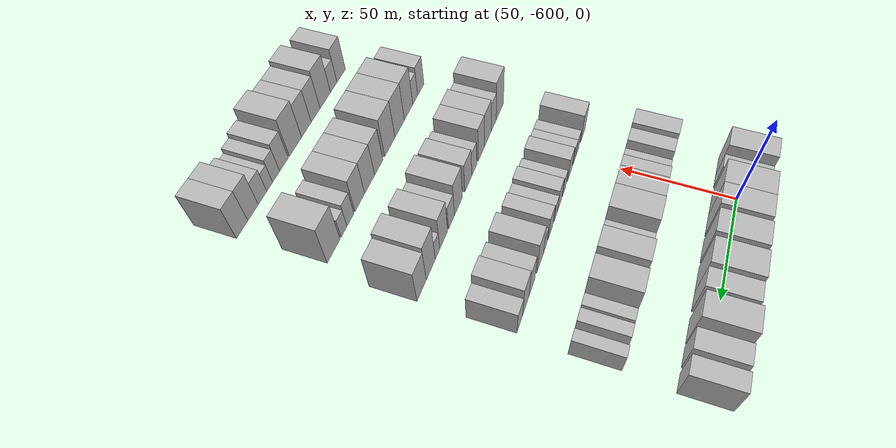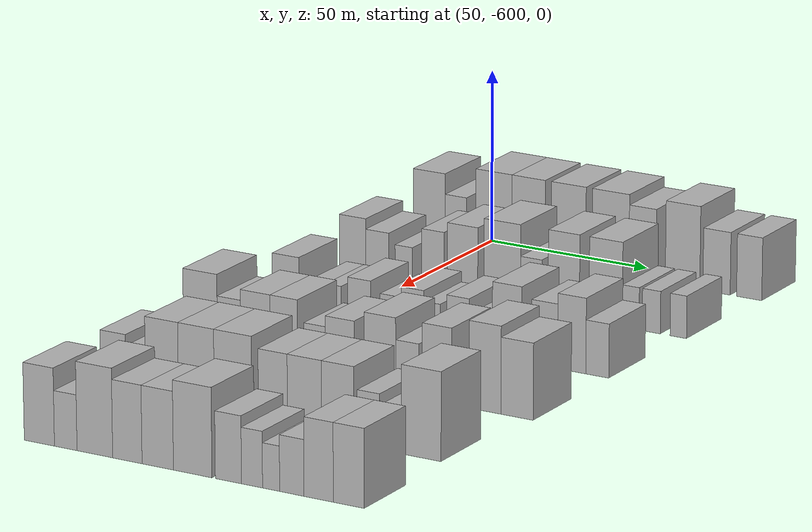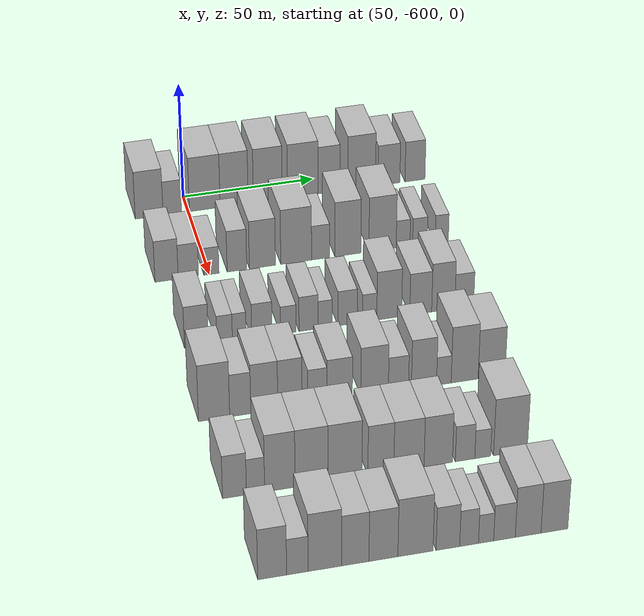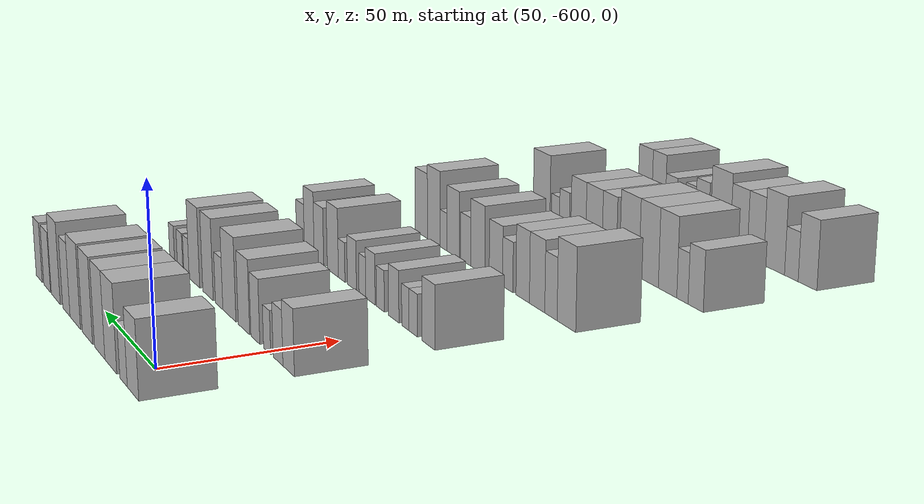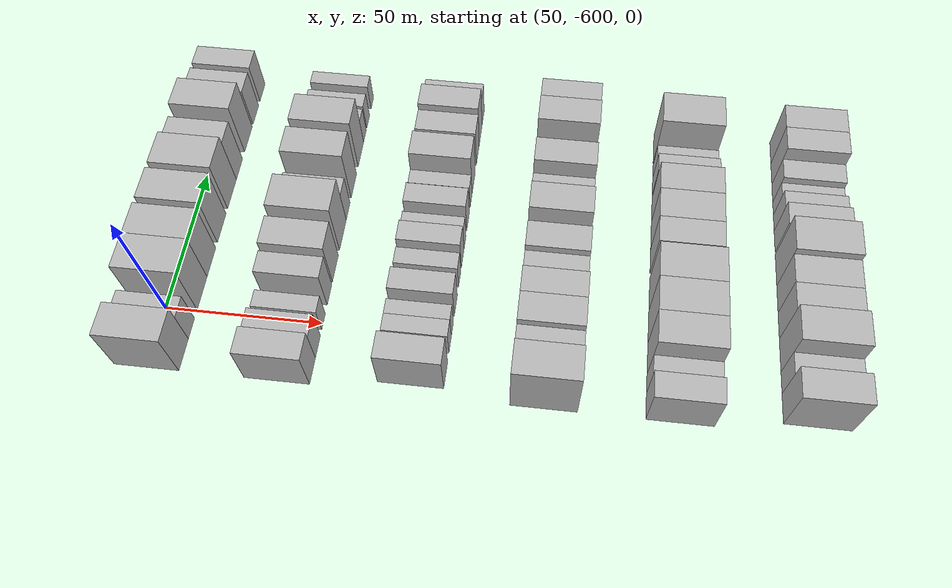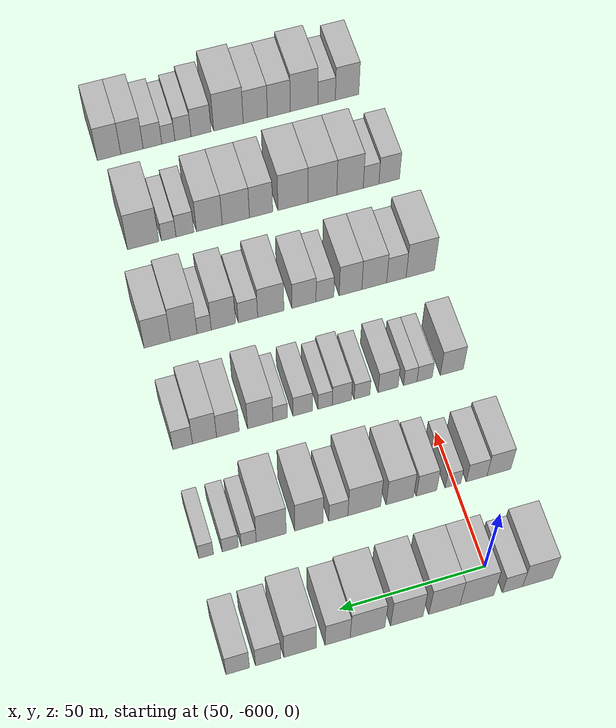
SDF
<sdf version="1.6">
 <world name="default">
  <model name="building_1">
   <static>1</static>
   <pose>50.0000 -614.7696 0 0.000000 0.000000 0.000000</pose>
   <link name="link">
    <pose>0 0 10.50 0 0 0</pose>
    <collision name="collision"><geometry><box><size>20.0000 10.4608 21.0000</size></box></geometry></collision>
    <visual name="visual">
     <cast_shadows>0</cast_shadows>
     <geometry><box><size>20.0000 10.4608 21.0000</size></box></geometry>
     <material>
      <script>
       <uri>model://HANNAS_wall/materials/scripts</uri>
       <uri>model://HANNAS_wall/materials/textures</uri>
       <name>vrc/HANNAS_wall</name>
      </script>
     </material>
    </visual>
   </link>
  </model>
  <model name="building_2">
   <static>1</static>
   <pose>50.0000 -606.0425 0 0.000000 0.000000 0.000000</pose>
   <link name="link">
    <pose>0 0 7.50 0 0 0</pose>
    <collision name="collision"><geometry><box><size>20.0000 6.9933 15.0000</size></box></geometry></collision>
    <visual name="visual">
     <cast_shadows>0</cast_shadows>
     <geometry><box><size>20.0000 6.9933 15.0000</size></box></geometry>
     <material>
      <script>
       <uri>model://HANNAS_wall/materials/scripts</uri>
       <uri>model://HANNAS_wall/materials/textures</uri>
       <name>vrc/HANNAS_wall</name>
      </script>
     </material>
    </visual>
   </link>
  </model>
  <model name="building_3">
   <static>1</static>
   <pose>50.0000 -593.7017 0 0.000000 0.000000 0.000000</pose>
   <link name="link">
    <pose>0 0 12.00 0 0 0</pose>
    <collision name="collision"><geometry><box><size>20.0000 11.6883 24.0000</size></box></geometry></collision>
    <visual name="visual">
     <cast_shadows>0</cast_shadows>
     <geometry><box><size>20.0000 11.6883 24.0000</size></box></geometry>
     <material>
      <script>
       <uri>model://HANNAS_wall/materials/scripts</uri>
       <uri>model://HANNAS_wall/materials/textures</uri>
       <name>vrc/HANNAS_wall</name>
      </script>
     </material>
    </visual>
   </link>
  </model>
  <model name="building_4">
   <static>1</static>
   <pose>50.0000 -582.5032 0 0.000000 0.000000 0.000000</pose>
   <link name="link">
    <pose>0 0 12.00 0 0 0</pose>
    <collision name="collision"><geometry><box><size>20.0000 10.7088 24.0000</size></box></geometry></collision>
    <visual name="visual">
     <cast_shadows>0</cast_shadows>
     <geometry><box><size>20.0000 10.7088 24.0000</size></box></geometry>
     <material>
      <script>
       <uri>model://HANNAS_wall/materials/scripts</uri>
       <uri>model://HANNAS_wall/materials/textures</uri>
       <name>vrc/HANNAS_wall</name>
      </script>
     </material>
    </visual>
   </link>
  </model>
  <model name="building_5">
   <static>1</static>
   <pose>50.0000 -569.6281 0 0.000000 0.000000 0.000000</pose>
   <link name="link">
    <pose>0 0 12.00 0 0 0</pose>
    <collision name="collision"><geometry><box><size>20.0000 11.0413 24.0000</size></box></geometry></collision>
    <visual name="visual">
     <cast_shadows>0</cast_shadows>
     <geometry><box><size>20.0000 11.0413 24.0000</size></box></geometry>
     <material>
      <script>
       <uri>model://HANNAS_wall/materials/scripts</uri>
       <uri>model://HANNAS_wall/materials/textures</uri>
       <name>vrc/HANNAS_wall</name>
      </script>
     </material>
    </visual>
   </link>
  </model>
  <model name="building_6">
   <static>1</static>
   <pose>50.0000 -556.2338 0 0.000000 0.000000 0.000000</pose>
   <link name="link">
    <pose>0 0 12.00 0 0 0</pose>
    <collision name="collision"><geometry><box><size>20.0000 11.7473 24.0000</size></box></geometry></collision>
    <visual name="visual">
     <cast_shadows>0</cast_shadows>
     <geometry><box><size>20.0000 11.7473 24.0000</size></box></geometry>
     <material>
      <script>
       <uri>model://HANNAS_wall/materials/scripts</uri>
       <uri>model://HANNAS_wall/materials/textures</uri>
       <name>vrc/HANNAS_wall</name>
      </script>
     </material>
    </visual>
   </link>
  </model>
  <model name="building_7">
   <static>1</static>
   <pose>50.0000 -546.1125 0 0.000000 0.000000 0.000000</pose>
   <link name="link">
    <pose>0 0 10.50 0 0 0</pose>
    <collision name="collision"><geometry><box><size>20.0000 8.4954 21.0000</size></box></geometry></collision>
    <visual name="visual">
     <cast_shadows>0</cast_shadows>
     <geometry><box><size>20.0000 8.4954 21.0000</size></box></geometry>
     <material>
      <script>
       <uri>model://HANNAS_wall/materials/scripts</uri>
       <uri>model://HANNAS_wall/materials/textures</uri>
       <name>vrc/HANNAS_wall</name>
      </script>
     </material>
    </visual>
   </link>
  </model>
  <model name="building_8">
   <static>1</static>
   <pose>50.0000 -533.4575 0 0.000000 0.000000 0.000000</pose>
   <link name="link">
    <pose>0 0 12.00 0 0 0</pose>
    <collision name="collision"><geometry><box><size>20.0000 10.8145 24.0000</size></box></geometry></collision>
    <visual name="visual">
     <cast_shadows>0</cast_shadows>
     <geometry><box><size>20.0000 10.8145 24.0000</size></box></geometry>
     <material>
      <script>
       <uri>model://HANNAS_wall/materials/scripts</uri>
       <uri>model://HANNAS_wall/materials/textures</uri>
       <name>vrc/HANNAS_wall</name>
      </script>
     </material>
    </visual>
   </link>
  </model>
  <model name="building_9">
   <static>1</static>
   <pose>50.0000 -522.8115 0 0.000000 0.000000 0.000000</pose>
   <link name="link">
    <pose>0 0 9.00 0 0 0</pose>
    <collision name="collision"><geometry><box><size>20.0000 8.4775 18.0000</size></box></geometry></collision>
    <visual name="visual">
     <cast_shadows>0</cast_shadows>
     <geometry><box><size>20.0000 8.4775 18.0000</size></box></geometry>
     <material>
      <script>
       <uri>model://HANNAS_wall/materials/scripts</uri>
       <uri>model://HANNAS_wall/materials/textures</uri>
       <name>vrc/HANNAS_wall</name>
      </script>
     </material>
    </visual>
   </link>
  </model>
  <model name="building_10">
   <static>1</static>
   <pose>50.0000 -512.6700 0 0.000000 0.000000 0.000000</pose>
   <link name="link">
    <pose>0 0 9.00 0 0 0</pose>
    <collision name="collision"><geometry><box><size>20.0000 7.8055 18.0000</size></box></geometry></collision>
    <visual name="visual">
     <cast_shadows>0</cast_shadows>
     <geometry><box><size>20.0000 7.8055 18.0000</size></box></geometry>
     <material>
      <script>
       <uri>model://HANNAS_wall/materials/scripts</uri>
       <uri>model://HANNAS_wall/materials/textures</uri>
       <name>vrc/HANNAS_wall</name>
      </script>
     </material>
    </visual>
   </link>
  </model>
  <model name="building_133">
   <static>1</static>
   <pose>90.0000 -615.7513 0 0.000000 0.000000 0.000000</pose>
   <link name="link">
    <pose>0 0 9.00 0 0 0</pose>
    <collision name="collision"><geometry><box><size>20.0000 8.4974 18.0000</size></box></geometry></collision>
    <visual name="visual">
     <cast_shadows>0</cast_shadows>
     <geometry><box><size>20.0000 8.4974 18.0000</size></box></geometry>
     <material>
      <script>
       <uri>model://HANNAS_wall/materials/scripts</uri>
       <uri>model://HANNAS_wall/materials/textures</uri>
       <name>vrc/HANNAS_wall</name>
      </script>
     </material>
    </visual>
   </link>
  </model>
  <model name="building_134">
   <static>1</static>
   <pose>90.0000 -607.7898 0 0.000000 0.000000 0.000000</pose>
   <link name="link">
    <pose>0 0 7.50 0 0 0</pose>
    <collision name="collision"><geometry><box><size>20.0000 7.4257 15.0000</size></box></geometry></collision>
    <visual name="visual">
     <cast_shadows>0</cast_shadows>
     <geometry><box><size>20.0000 7.4257 15.0000</size></box></geometry>
     <material>
      <script>
       <uri>model://HANNAS_wall/materials/scripts</uri>
       <uri>model://HANNAS_wall/materials/textures</uri>
       <name>vrc/HANNAS_wall</name>
      </script>
     </material>
    </visual>
   </link>
  </model>
  <model name="building_135">
   <static>1</static>
   <pose>90.0000 -599.2980 0 0.000000 0.000000 0.000000</pose>
   <link name="link">
    <pose>0 0 6.00 0 0 0</pose>
    <collision name="collision"><geometry><box><size>20.0000 5.5579 12.0000</size></box></geometry></collision>
    <visual name="visual">
     <cast_shadows>0</cast_shadows>
     <geometry><box><size>20.0000 5.5579 12.0000</size></box></geometry>
     <material>
      <script>
       <uri>model://HANNAS_wall/materials/scripts</uri>
       <uri>model://HANNAS_wall/materials/textures</uri>
       <name>vrc/HANNAS_wall</name>
      </script>
     </material>
    </visual>
   </link>
  </model>
  <model name="building_136">
   <static>1</static>
   <pose>90.0000 -589.9092 0 0.000000 0.000000 0.000000</pose>
   <link name="link">
    <pose>0 0 9.00 0 0 0</pose>
    <collision name="collision"><geometry><box><size>20.0000 7.2196 18.0000</size></box></geometry></collision>
    <visual name="visual">
     <cast_shadows>0</cast_shadows>
     <geometry><box><size>20.0000 7.2196 18.0000</size></box></geometry>
     <material>
      <script>
       <uri>model://HANNAS_wall/materials/scripts</uri>
       <uri>model://HANNAS_wall/materials/textures</uri>
       <name>vrc/HANNAS_wall</name>
      </script>
     </material>
    </visual>
   </link>
  </model>
  <model name="building_137">
   <static>1</static>
   <pose>90.0000 -580.4856 0 0.000000 0.000000 0.000000</pose>
   <link name="link">
    <pose>0 0 10.50 0 0 0</pose>
    <collision name="collision"><geometry><box><size>20.0000 9.6277 21.0000</size></box></geometry></collision>
    <visual name="visual">
     <cast_shadows>0</cast_shadows>
     <geometry><box><size>20.0000 9.6277 21.0000</size></box></geometry>
     <material>
      <script>
       <uri>model://HANNAS_wall/materials/scripts</uri>
       <uri>model://HANNAS_wall/materials/textures</uri>
       <name>vrc/HANNAS_wall</name>
      </script>
     </material>
    </visual>
   </link>
  </model>
  <model name="building_138">
   <static>1</static>
   <pose>90.0000 -567.9308 0 0.000000 0.000000 0.000000</pose>
   <link name="link">
    <pose>0 0 12.00 0 0 0</pose>
    <collision name="collision"><geometry><box><size>20.0000 11.4818 24.0000</size></box></geometry></collision>
    <visual name="visual">
     <cast_shadows>0</cast_shadows>
     <geometry><box><size>20.0000 11.4818 24.0000</size></box></geometry>
     <material>
      <script>
       <uri>model://HANNAS_wall/materials/scripts</uri>
       <uri>model://HANNAS_wall/materials/textures</uri>
       <name>vrc/HANNAS_wall</name>
      </script>
     </material>
    </visual>
   </link>
  </model>
  <model name="building_139">
   <static>1</static>
   <pose>90.0000 -558.8402 0 0.000000 0.000000 0.000000</pose>
   <link name="link">
    <pose>0 0 7.50 0 0 0</pose>
    <collision name="collision"><geometry><box><size>20.0000 6.6993 15.0000</size></box></geometry></collision>
    <visual name="visual">
     <cast_shadows>0</cast_shadows>
     <geometry><box><size>20.0000 6.6993 15.0000</size></box></geometry>
     <material>
      <script>
       <uri>model://HANNAS_wall/materials/scripts</uri>
       <uri>model://HANNAS_wall/materials/textures</uri>
       <name>vrc/HANNAS_wall</name>
      </script>
     </material>
    </visual>
   </link>
  </model>
  <model name="building_140">
   <static>1</static>
   <pose>90.0000 -548.6056 0 0.000000 0.000000 0.000000</pose>
   <link name="link">
    <pose>0 0 12.00 0 0 0</pose>
    <collision name="collision"><geometry><box><size>20.0000 9.7699 24.0000</size></box></geometry></collision>
    <visual name="visual">
     <cast_shadows>0</cast_shadows>
     <geometry><box><size>20.0000 9.7699 24.0000</size></box></geometry>
     <material>
      <script>
       <uri>model://HANNAS_wall/materials/scripts</uri>
       <uri>model://HANNAS_wall/materials/textures</uri>
       <name>vrc/HANNAS_wall</name>
      </script>
     </material>
    </visual>
   </link>
  </model>
  <model name="building_141">
   <static>1</static>
   <pose>90.0000 -535.5676 0 0.000000 0.000000 0.000000</pose>
   <link name="link">
    <pose>0 0 12.00 0 0 0</pose>
    <collision name="collision"><geometry><box><size>20.0000 10.3060 24.0000</size></box></geometry></collision>
    <visual name="visual">
     <cast_shadows>0</cast_shadows>
     <geometry><box><size>20.0000 10.3060 24.0000</size></box></geometry>
     <material>
      <script>
       <uri>model://HANNAS_wall/materials/scripts</uri>
       <uri>model://HANNAS_wall/materials/textures</uri>
       <name>vrc/HANNAS_wall</name>
      </script>
     </material>
    </visual>
   </link>
  </model>
  <model name="building_142">
   <static>1</static>
   <pose>90.0000 -527.8223 0 0.000000 0.000000 0.000000</pose>
   <link name="link">
    <pose>0 0 6.00 0 0 0</pose>
    <collision name="collision"><geometry><box><size>20.0000 5.1847 12.0000</size></box></geometry></collision>
    <visual name="visual">
     <cast_shadows>0</cast_shadows>
     <geometry><box><size>20.0000 5.1847 12.0000</size></box></geometry>
     <material>
      <script>
       <uri>model://HANNAS_wall/materials/scripts</uri>
       <uri>model://HANNAS_wall/materials/textures</uri>
       <name>vrc/HANNAS_wall</name>
      </script>
     </material>
    </visual>
   </link>
  </model>
  <model name="building_143">
   <static>1</static>
   <pose>90.0000 -521.4570 0 0.000000 0.000000 0.000000</pose>
   <link name="link">
    <pose>0 0 6.00 0 0 0</pose>
    <collision name="collision"><geometry><box><size>20.0000 5.5458 12.0000</size></box></geometry></collision>
    <visual name="visual">
     <cast_shadows>0</cast_shadows>
     <geometry><box><size>20.0000 5.5458 12.0000</size></box></geometry>
     <material>
      <script>
       <uri>model://HANNAS_wall/materials/scripts</uri>
       <uri>model://HANNAS_wall/materials/textures</uri>
       <name>vrc/HANNAS_wall</name>
      </script>
     </material>
    </visual>
   </link>
  </model>
  <model name="building_144">
   <static>1</static>
   <pose>90.0000 -513.1709 0 0.000000 0.000000 0.000000</pose>
   <link name="link">
    <pose>0 0 6.00 0 0 0</pose>
    <collision name="collision"><geometry><box><size>20.0000 5.0264 12.0000</size></box></geometry></collision>
    <visual name="visual">
     <cast_shadows>0</cast_shadows>
     <geometry><box><size>20.0000 5.0264 12.0000</size></box></geometry>
     <material>
      <script>
       <uri>model://HANNAS_wall/materials/scripts</uri>
       <uri>model://HANNAS_wall/materials/textures</uri>
       <name>vrc/HANNAS_wall</name>
      </script>
     </material>
    </visual>
   </link>
  </model>
  <model name="building_271">
   <static>1</static>
   <pose>130.0000 -612.7672 0 0.000000 0.000000 0.000000</pose>
   <link name="link">
    <pose>0 0 9.00 0 0 0</pose>
    <collision name="collision"><geometry><box><size>20.0000 8.4656 18.0000</size></box></geometry></collision>
    <visual name="visual">
     <cast_shadows>0</cast_shadows>
     <geometry><box><size>20.0000 8.4656 18.0000</size></box></geometry>
     <material>
      <script>
       <uri>model://HANNAS_wall/materials/scripts</uri>
       <uri>model://HANNAS_wall/materials/textures</uri>
       <name>vrc/HANNAS_wall</name>
      </script>
     </material>
    </visual>
   </link>
  </model>
  <model name="building_272">
   <static>1</static>
   <pose>130.0000 -602.7459 0 0.000000 0.000000 0.000000</pose>
   <link name="link">
    <pose>0 0 6.00 0 0 0</pose>
    <collision name="collision"><geometry><box><size>20.0000 5.5771 12.0000</size></box></geometry></collision>
    <visual name="visual">
     <cast_shadows>0</cast_shadows>
     <geometry><box><size>20.0000 5.5771 12.0000</size></box></geometry>
     <material>
      <script>
       <uri>model://HANNAS_wall/materials/scripts</uri>
       <uri>model://HANNAS_wall/materials/textures</uri>
       <name>vrc/HANNAS_wall</name>
      </script>
     </material>
    </visual>
   </link>
  </model>
  <model name="building_273">
   <static>1</static>
   <pose>130.0000 -597.5039 0 0.000000 0.000000 0.000000</pose>
   <link name="link">
    <pose>0 0 6.00 0 0 0</pose>
    <collision name="collision"><geometry><box><size>20.0000 4.9068 12.0000</size></box></geometry></collision>
    <visual name="visual">
     <cast_shadows>0</cast_shadows>
     <geometry><box><size>20.0000 4.9068 12.0000</size></box></geometry>
     <material>
      <script>
       <uri>model://HANNAS_wall/materials/scripts</uri>
       <uri>model://HANNAS_wall/materials/textures</uri>
       <name>vrc/HANNAS_wall</name>
      </script>
     </material>
    </visual>
   </link>
  </model>
  <model name="building_274">
   <static>1</static>
   <pose>130.0000 -589.4142 0 0.000000 0.000000 0.000000</pose>
   <link name="link">
    <pose>0 0 7.50 0 0 0</pose>
    <collision name="collision"><geometry><box><size>20.0000 7.2727 15.0000</size></box></geometry></collision>
    <visual name="visual">
     <cast_shadows>0</cast_shadows>
     <geometry><box><size>20.0000 7.2727 15.0000</size></box></geometry>
     <material>
      <script>
       <uri>model://HANNAS_wall/materials/scripts</uri>
       <uri>model://HANNAS_wall/materials/textures</uri>
       <name>vrc/HANNAS_wall</name>
      </script>
     </material>
    </visual>
   </link>
  </model>
  <model name="building_275">
   <static>1</static>
   <pose>130.0000 -579.9360 0 0.000000 0.000000 0.000000</pose>
   <link name="link">
    <pose>0 0 6.00 0 0 0</pose>
    <collision name="collision"><geometry><box><size>20.0000 5.6836 12.0000</size></box></geometry></collision>
    <visual name="visual">
     <cast_shadows>0</cast_shadows>
     <geometry><box><size>20.0000 5.6836 12.0000</size></box></geometry>
     <material>
      <script>
       <uri>model://HANNAS_wall/materials/scripts</uri>
       <uri>model://HANNAS_wall/materials/textures</uri>
       <name>vrc/HANNAS_wall</name>
      </script>
     </material>
    </visual>
   </link>
  </model>
  <model name="building_276">
   <static>1</static>
   <pose>130.0000 -572.6393 0 0.000000 0.000000 0.000000</pose>
   <link name="link">
    <pose>0 0 7.50 0 0 0</pose>
    <collision name="collision"><geometry><box><size>20.0000 6.9097 15.0000</size></box></geometry></collision>
    <visual name="visual">
     <cast_shadows>0</cast_shadows>
     <geometry><box><size>20.0000 6.9097 15.0000</size></box></geometry>
     <material>
      <script>
       <uri>model://HANNAS_wall/materials/scripts</uri>
       <uri>model://HANNAS_wall/materials/textures</uri>
       <name>vrc/HANNAS_wall</name>
      </script>
     </material>
    </visual>
   </link>
  </model>
  <model name="building_277">
   <static>1</static>
   <pose>130.0000 -566.6113 0 0.000000 0.000000 0.000000</pose>
   <link name="link">
    <pose>0 0 6.00 0 0 0</pose>
    <collision name="collision"><geometry><box><size>20.0000 5.1464 12.0000</size></box></geometry></collision>
    <visual name="visual">
     <cast_shadows>0</cast_shadows>
     <geometry><box><size>20.0000 5.1464 12.0000</size></box></geometry>
     <material>
      <script>
       <uri>model://HANNAS_wall/materials/scripts</uri>
       <uri>model://HANNAS_wall/materials/textures</uri>
       <name>vrc/HANNAS_wall</name>
      </script>
     </material>
    </visual>
   </link>
  </model>
  <model name="building_278">
   <static>1</static>
   <pose>130.0000 -558.5563 0 0.000000 0.000000 0.000000</pose>
   <link name="link">
    <pose>0 0 7.50 0 0 0</pose>
    <collision name="collision"><geometry><box><size>20.0000 6.9637 15.0000</size></box></geometry></collision>
    <visual name="visual">
     <cast_shadows>0</cast_shadows>
     <geometry><box><size>20.0000 6.9637 15.0000</size></box></geometry>
     <material>
      <script>
       <uri>model://HANNAS_wall/materials/scripts</uri>
       <uri>model://HANNAS_wall/materials/textures</uri>
       <name>vrc/HANNAS_wall</name>
      </script>
     </material>
    </visual>
   </link>
  </model>
  <model name="building_279">
   <static>1</static>
   <pose>130.0000 -550.4895 0 0.000000 0.000000 0.000000</pose>
   <link name="link">
    <pose>0 0 6.00 0 0 0</pose>
    <collision name="collision"><geometry><box><size>20.0000 5.1698 12.0000</size></box></geometry></collision>
    <visual name="visual">
     <cast_shadows>0</cast_shadows>
     <geometry><box><size>20.0000 5.1698 12.0000</size></box></geometry>
     <material>
      <script>
       <uri>model://HANNAS_wall/materials/scripts</uri>
       <uri>model://HANNAS_wall/materials/textures</uri>
       <name>vrc/HANNAS_wall</name>
      </script>
     </material>
    </visual>
   </link>
  </model>
  <model name="building_280">
   <static>1</static>
   <pose>130.0000 -543.3882 0 0.000000 0.000000 0.000000</pose>
   <link name="link">
    <pose>0 0 10.50 0 0 0</pose>
    <collision name="collision"><geometry><box><size>20.0000 9.0329 21.0000</size></box></geometry></collision>
    <visual name="visual">
     <cast_shadows>0</cast_shadows>
     <geometry><box><size>20.0000 9.0329 21.0000</size></box></geometry>
     <material>
      <script>
       <uri>model://HANNAS_wall/materials/scripts</uri>
       <uri>model://HANNAS_wall/materials/textures</uri>
       <name>vrc/HANNAS_wall</name>
      </script>
     </material>
    </visual>
   </link>
  </model>
  <model name="building_281">
   <static>1</static>
   <pose>130.0000 -531.8668 0 0.000000 0.000000 0.000000</pose>
   <link name="link">
    <pose>0 0 9.00 0 0 0</pose>
    <collision name="collision"><geometry><box><size>20.0000 8.0097 18.0000</size></box></geometry></collision>
    <visual name="visual">
     <cast_shadows>0</cast_shadows>
     <geometry><box><size>20.0000 8.0097 18.0000</size></box></geometry>
     <material>
      <script>
       <uri>model://HANNAS_wall/materials/scripts</uri>
       <uri>model://HANNAS_wall/materials/textures</uri>
       <name>vrc/HANNAS_wall</name>
      </script>
     </material>
    </visual>
   </link>
  </model>
  <model name="building_282">
   <static>1</static>
   <pose>130.0000 -523.6090 0 0.000000 0.000000 0.000000</pose>
   <link name="link">
    <pose>0 0 10.50 0 0 0</pose>
    <collision name="collision"><geometry><box><size>20.0000 8.5059 21.0000</size></box></geometry></collision>
    <visual name="visual">
     <cast_shadows>0</cast_shadows>
     <geometry><box><size>20.0000 8.5059 21.0000</size></box></geometry>
     <material>
      <script>
       <uri>model://HANNAS_wall/materials/scripts</uri>
       <uri>model://HANNAS_wall/materials/textures</uri>
       <name>vrc/HANNAS_wall</name>
      </script>
     </material>
    </visual>
   </link>
  </model>
  <model name="building_283">
   <static>1</static>
   <pose>130.0000 -515.8775 0 0.000000 0.000000 0.000000</pose>
   <link name="link">
    <pose>0 0 7.50 0 0 0</pose>
    <collision name="collision"><geometry><box><size>20.0000 6.9573 15.0000</size></box></geometry></collision>
    <visual name="visual">
     <cast_shadows>0</cast_shadows>
     <geometry><box><size>20.0000 6.9573 15.0000</size></box></geometry>
     <material>
      <script>
       <uri>model://HANNAS_wall/materials/scripts</uri>
       <uri>model://HANNAS_wall/materials/textures</uri>
       <name>vrc/HANNAS_wall</name>
      </script>
     </material>
    </visual>
   </link>
  </model>
  <model name="building_412">
   <static>1</static>
   <pose>170.0000 -614.6340 0 0.000000 0.000000 0.000000</pose>
   <link name="link">
    <pose>0 0 12.00 0 0 0</pose>
    <collision name="collision"><geometry><box><size>20.0000 10.7320 24.0000</size></box></geometry></collision>
    <visual name="visual">
     <cast_shadows>0</cast_shadows>
     <geometry><box><size>20.0000 10.7320 24.0000</size></box></geometry>
     <material>
      <script>
       <uri>model://HANNAS_wall/materials/scripts</uri>
       <uri>model://HANNAS_wall/materials/textures</uri>
       <name>vrc/HANNAS_wall</name>
      </script>
     </material>
    </visual>
   </link>
  </model>
  <model name="building_413">
   <static>1</static>
   <pose>170.0000 -605.6247 0 0.000000 0.000000 0.000000</pose>
   <link name="link">
    <pose>0 0 9.00 0 0 0</pose>
    <collision name="collision"><geometry><box><size>20.0000 7.2866 18.0000</size></box></geometry></collision>
    <visual name="visual">
     <cast_shadows>0</cast_shadows>
     <geometry><box><size>20.0000 7.2866 18.0000</size></box></geometry>
     <material>
      <script>
       <uri>model://HANNAS_wall/materials/scripts</uri>
       <uri>model://HANNAS_wall/materials/textures</uri>
       <name>vrc/HANNAS_wall</name>
      </script>
     </material>
    </visual>
   </link>
  </model>
  <model name="building_414">
   <static>1</static>
   <pose>170.0000 -597.3180 0 0.000000 0.000000 0.000000</pose>
   <link name="link">
    <pose>0 0 10.50 0 0 0</pose>
    <collision name="collision"><geometry><box><size>20.0000 9.3269 21.0000</size></box></geometry></collision>
    <visual name="visual">
     <cast_shadows>0</cast_shadows>
     <geometry><box><size>20.0000 9.3269 21.0000</size></box></geometry>
     <material>
      <script>
       <uri>model://HANNAS_wall/materials/scripts</uri>
       <uri>model://HANNAS_wall/materials/textures</uri>
       <name>vrc/HANNAS_wall</name>
      </script>
     </material>
    </visual>
   </link>
  </model>
  <model name="building_415">
   <static>1</static>
   <pose>170.0000 -588.4279 0 0.000000 0.000000 0.000000</pose>
   <link name="link">
    <pose>0 0 10.50 0 0 0</pose>
    <collision name="collision"><geometry><box><size>20.0000 8.4533 21.0000</size></box></geometry></collision>
    <visual name="visual">
     <cast_shadows>0</cast_shadows>
     <geometry><box><size>20.0000 8.4533 21.0000</size></box></geometry>
     <material>
      <script>
       <uri>model://HANNAS_wall/materials/scripts</uri>
       <uri>model://HANNAS_wall/materials/textures</uri>
       <name>vrc/HANNAS_wall</name>
      </script>
     </material>
    </visual>
   </link>
  </model>
  <model name="building_416">
   <static>1</static>
   <pose>170.0000 -578.8781 0 0.000000 0.000000 0.000000</pose>
   <link name="link">
    <pose>0 0 7.50 0 0 0</pose>
    <collision name="collision"><geometry><box><size>20.0000 6.6463 15.0000</size></box></geometry></collision>
    <visual name="visual">
     <cast_shadows>0</cast_shadows>
     <geometry><box><size>20.0000 6.6463 15.0000</size></box></geometry>
     <material>
      <script>
       <uri>model://HANNAS_wall/materials/scripts</uri>
       <uri>model://HANNAS_wall/materials/textures</uri>
       <name>vrc/HANNAS_wall</name>
      </script>
     </material>
    </visual>
   </link>
  </model>
  <model name="building_417">
   <static>1</static>
   <pose>170.0000 -571.1126 0 0.000000 0.000000 0.000000</pose>
   <link name="link">
    <pose>0 0 9.00 0 0 0</pose>
    <collision name="collision"><geometry><box><size>20.0000 8.8847 18.0000</size></box></geometry></collision>
    <visual name="visual">
     <cast_shadows>0</cast_shadows>
     <geometry><box><size>20.0000 8.8847 18.0000</size></box></geometry>
     <material>
      <script>
       <uri>model://HANNAS_wall/materials/scripts</uri>
       <uri>model://HANNAS_wall/materials/textures</uri>
       <name>vrc/HANNAS_wall</name>
      </script>
     </material>
    </visual>
   </link>
  </model>
  <model name="building_418">
   <static>1</static>
   <pose>170.0000 -558.8427 0 0.000000 0.000000 0.000000</pose>
   <link name="link">
    <pose>0 0 10.50 0 0 0</pose>
    <collision name="collision"><geometry><box><size>20.0000 9.6550 21.0000</size></box></geometry></collision>
    <visual name="visual">
     <cast_shadows>0</cast_shadows>
     <geometry><box><size>20.0000 9.6550 21.0000</size></box></geometry>
     <material>
      <script>
       <uri>model://HANNAS_wall/materials/scripts</uri>
       <uri>model://HANNAS_wall/materials/textures</uri>
       <name>vrc/HANNAS_wall</name>
      </script>
     </material>
    </visual>
   </link>
  </model>
  <model name="building_419">
   <static>1</static>
   <pose>170.0000 -550.4582 0 0.000000 0.000000 0.000000</pose>
   <link name="link">
    <pose>0 0 7.50 0 0 0</pose>
    <collision name="collision"><geometry><box><size>20.0000 7.1140 15.0000</size></box></geometry></collision>
    <visual name="visual">
     <cast_shadows>0</cast_shadows>
     <geometry><box><size>20.0000 7.1140 15.0000</size></box></geometry>
     <material>
      <script>
       <uri>model://HANNAS_wall/materials/scripts</uri>
       <uri>model://HANNAS_wall/materials/textures</uri>
       <name>vrc/HANNAS_wall</name>
      </script>
     </material>
    </visual>
   </link>
  </model>
  <model name="building_420">
   <static>1</static>
   <pose>170.0000 -541.4496 0 0.000000 0.000000 0.000000</pose>
   <link name="link">
    <pose>0 0 10.50 0 0 0</pose>
    <collision name="collision"><geometry><box><size>20.0000 8.9032 21.0000</size></box></geometry></collision>
    <visual name="visual">
     <cast_shadows>0</cast_shadows>
     <geometry><box><size>20.0000 8.9032 21.0000</size></box></geometry>
     <material>
      <script>
       <uri>model://HANNAS_wall/materials/scripts</uri>
       <uri>model://HANNAS_wall/materials/textures</uri>
       <name>vrc/HANNAS_wall</name>
      </script>
     </material>
    </visual>
   </link>
  </model>
  <model name="building_421">
   <static>1</static>
   <pose>170.0000 -534.4088 0 0.000000 0.000000 0.000000</pose>
   <link name="link">
    <pose>0 0 6.00 0 0 0</pose>
    <collision name="collision"><geometry><box><size>20.0000 5.1784 12.0000</size></box></geometry></collision>
    <visual name="visual">
     <cast_shadows>0</cast_shadows>
     <geometry><box><size>20.0000 5.1784 12.0000</size></box></geometry>
     <material>
      <script>
       <uri>model://HANNAS_wall/materials/scripts</uri>
       <uri>model://HANNAS_wall/materials/textures</uri>
       <name>vrc/HANNAS_wall</name>
      </script>
     </material>
    </visual>
   </link>
  </model>
  <model name="building_422">
   <static>1</static>
   <pose>170.0000 -527.0033 0 0.000000 0.000000 0.000000</pose>
   <link name="link">
    <pose>0 0 12.00 0 0 0</pose>
    <collision name="collision"><geometry><box><size>20.0000 9.6326 24.0000</size></box></geometry></collision>
    <visual name="visual">
     <cast_shadows>0</cast_shadows>
     <geometry><box><size>20.0000 9.6326 24.0000</size></box></geometry>
     <material>
      <script>
       <uri>model://HANNAS_wall/materials/scripts</uri>
       <uri>model://HANNAS_wall/materials/textures</uri>
       <name>vrc/HANNAS_wall</name>
      </script>
     </material>
    </visual>
   </link>
  </model>
  <model name="building_423">
   <static>1</static>
   <pose>170.0000 -517.3755 0 0.000000 0.000000 0.000000</pose>
   <link name="link">
    <pose>0 0 10.50 0 0 0</pose>
    <collision name="collision"><geometry><box><size>20.0000 9.6228 21.0000</size></box></geometry></collision>
    <visual name="visual">
     <cast_shadows>0</cast_shadows>
     <geometry><box><size>20.0000 9.6228 21.0000</size></box></geometry>
     <material>
      <script>
       <uri>model://HANNAS_wall/materials/scripts</uri>
       <uri>model://HANNAS_wall/materials/textures</uri>
       <name>vrc/HANNAS_wall</name>
      </script>
     </material>
    </visual>
   </link>
  </model>
  <model name="building_555">
   <static>1</static>
   <pose>210.0000 -616.0213 0 0.000000 0.000000 0.000000</pose>
   <link name="link">
    <pose>0 0 9.00 0 0 0</pose>
    <collision name="collision"><geometry><box><size>20.0000 7.9574 18.0000</size></box></geometry></collision>
    <visual name="visual">
     <cast_shadows>0</cast_shadows>
     <geometry><box><size>20.0000 7.9574 18.0000</size></box></geometry>
     <material>
      <script>
       <uri>model://HANNAS_wall/materials/scripts</uri>
       <uri>model://HANNAS_wall/materials/textures</uri>
       <name>vrc/HANNAS_wall</name>
      </script>
     </material>
    </visual>
   </link>
  </model>
  <model name="building_556">
   <static>1</static>
   <pose>210.0000 -609.0141 0 0.000000 0.000000 0.000000</pose>
   <link name="link">
    <pose>0 0 7.50 0 0 0</pose>
    <collision name="collision"><geometry><box><size>20.0000 6.0569 15.0000</size></box></geometry></collision>
    <visual name="visual">
     <cast_shadows>0</cast_shadows>
     <geometry><box><size>20.0000 6.0569 15.0000</size></box></geometry>
     <material>
      <script>
       <uri>model://HANNAS_wall/materials/scripts</uri>
       <uri>model://HANNAS_wall/materials/textures</uri>
       <name>vrc/HANNAS_wall</name>
      </script>
     </material>
    </visual>
   </link>
  </model>
  <model name="building_557">
   <static>1</static>
   <pose>210.0000 -600.8928 0 0.000000 0.000000 0.000000</pose>
   <link name="link">
    <pose>0 0 12.00 0 0 0</pose>
    <collision name="collision"><geometry><box><size>20.0000 10.1856 24.0000</size></box></geometry></collision>
    <visual name="visual">
     <cast_shadows>0</cast_shadows>
     <geometry><box><size>20.0000 10.1856 24.0000</size></box></geometry>
     <material>
      <script>
       <uri>model://HANNAS_wall/materials/scripts</uri>
       <uri>model://HANNAS_wall/materials/textures</uri>
       <name>vrc/HANNAS_wall</name>
      </script>
     </material>
    </visual>
   </link>
  </model>
  <model name="building_558">
   <static>1</static>
   <pose>210.0000 -590.2921 0 0.000000 0.000000 0.000000</pose>
   <link name="link">
    <pose>0 0 12.00 0 0 0</pose>
    <collision name="collision"><geometry><box><size>20.0000 11.0157 24.0000</size></box></geometry></collision>
    <visual name="visual">
     <cast_shadows>0</cast_shadows>
     <geometry><box><size>20.0000 11.0157 24.0000</size></box></geometry>
     <material>
      <script>
       <uri>model://HANNAS_wall/materials/scripts</uri>
       <uri>model://HANNAS_wall/materials/textures</uri>
       <name>vrc/HANNAS_wall</name>
      </script>
     </material>
    </visual>
   </link>
  </model>
  <model name="building_559">
   <static>1</static>
   <pose>210.0000 -579.0417 0 0.000000 0.000000 0.000000</pose>
   <link name="link">
    <pose>0 0 12.00 0 0 0</pose>
    <collision name="collision"><geometry><box><size>20.0000 11.4851 24.0000</size></box></geometry></collision>
    <visual name="visual">
     <cast_shadows>0</cast_shadows>
     <geometry><box><size>20.0000 11.4851 24.0000</size></box></geometry>
     <material>
      <script>
       <uri>model://HANNAS_wall/materials/scripts</uri>
       <uri>model://HANNAS_wall/materials/textures</uri>
       <name>vrc/HANNAS_wall</name>
      </script>
     </material>
    </visual>
   </link>
  </model>
  <model name="building_560">
   <static>1</static>
   <pose>210.0000 -566.8939 0 0.000000 0.000000 0.000000</pose>
   <link name="link">
    <pose>0 0 10.50 0 0 0</pose>
    <collision name="collision"><geometry><box><size>20.0000 8.8107 21.0000</size></box></geometry></collision>
    <visual name="visual">
     <cast_shadows>0</cast_shadows>
     <geometry><box><size>20.0000 8.8107 21.0000</size></box></geometry>
     <material>
      <script>
       <uri>model://HANNAS_wall/materials/scripts</uri>
       <uri>model://HANNAS_wall/materials/textures</uri>
       <name>vrc/HANNAS_wall</name>
      </script>
     </material>
    </visual>
   </link>
  </model>
  <model name="building_561">
   <static>1</static>
   <pose>210.0000 -557.3398 0 0.000000 0.000000 0.000000</pose>
   <link name="link">
    <pose>0 0 10.50 0 0 0</pose>
    <collision name="collision"><geometry><box><size>20.0000 10.2974 21.0000</size></box></geometry></collision>
    <visual name="visual">
     <cast_shadows>0</cast_shadows>
     <geometry><box><size>20.0000 10.2974 21.0000</size></box></geometry>
     <material>
      <script>
       <uri>model://HANNAS_wall/materials/scripts</uri>
       <uri>model://HANNAS_wall/materials/textures</uri>
       <name>vrc/HANNAS_wall</name>
      </script>
     </material>
    </visual>
   </link>
  </model>
  <model name="building_562">
   <static>1</static>
   <pose>210.0000 -547.3403 0 0.000000 0.000000 0.000000</pose>
   <link name="link">
    <pose>0 0 10.50 0 0 0</pose>
    <collision name="collision"><geometry><box><size>20.0000 9.7017 21.0000</size></box></geometry></collision>
    <visual name="visual">
     <cast_shadows>0</cast_shadows>
     <geometry><box><size>20.0000 9.7017 21.0000</size></box></geometry>
     <material>
      <script>
       <uri>model://HANNAS_wall/materials/scripts</uri>
       <uri>model://HANNAS_wall/materials/textures</uri>
       <name>vrc/HANNAS_wall</name>
      </script>
     </material>
    </visual>
   </link>
  </model>
  <model name="building_563">
   <static>1</static>
   <pose>210.0000 -538.1446 0 0.000000 0.000000 0.000000</pose>
   <link name="link">
    <pose>0 0 7.50 0 0 0</pose>
    <collision name="collision"><geometry><box><size>20.0000 6.6898 15.0000</size></box></geometry></collision>
    <visual name="visual">
     <cast_shadows>0</cast_shadows>
     <geometry><box><size>20.0000 6.6898 15.0000</size></box></geometry>
     <material>
      <script>
       <uri>model://HANNAS_wall/materials/scripts</uri>
       <uri>model://HANNAS_wall/materials/textures</uri>
       <name>vrc/HANNAS_wall</name>
      </script>
     </material>
    </visual>
   </link>
  </model>
  <model name="building_564">
   <static>1</static>
   <pose>210.0000 -532.0777 0 0.000000 0.000000 0.000000</pose>
   <link name="link">
    <pose>0 0 6.00 0 0 0</pose>
    <collision name="collision"><geometry><box><size>20.0000 5.4439 12.0000</size></box></geometry></collision>
    <visual name="visual">
     <cast_shadows>0</cast_shadows>
     <geometry><box><size>20.0000 5.4439 12.0000</size></box></geometry>
     <material>
      <script>
       <uri>model://HANNAS_wall/materials/scripts</uri>
       <uri>model://HANNAS_wall/materials/textures</uri>
       <name>vrc/HANNAS_wall</name>
      </script>
     </material>
    </visual>
   </link>
  </model>
  <model name="building_565">
   <static>1</static>
   <pose>210.0000 -522.5188 0 0.000000 0.000000 0.000000</pose>
   <link name="link">
    <pose>0 0 12.00 0 0 0</pose>
    <collision name="collision"><geometry><box><size>20.0000 11.6739 24.0000</size></box></geometry></collision>
    <visual name="visual">
     <cast_shadows>0</cast_shadows>
     <geometry><box><size>20.0000 11.6739 24.0000</size></box></geometry>
     <material>
      <script>
       <uri>model://HANNAS_wall/materials/scripts</uri>
       <uri>model://HANNAS_wall/materials/textures</uri>
       <name>vrc/HANNAS_wall</name>
      </script>
     </material>
    </visual>
   </link>
  </model>
  <model name="building_693">
   <static>1</static>
   <pose>250.0000 -612.3544 0 0.000000 0.000000 0.000000</pose>
   <link name="link">
    <pose>0 0 10.50 0 0 0</pose>
    <collision name="collision"><geometry><box><size>20.0000 9.2912 21.0000</size></box></geometry></collision>
    <visual name="visual">
     <cast_shadows>0</cast_shadows>
     <geometry><box><size>20.0000 9.2912 21.0000</size></box></geometry>
     <material>
      <script>
       <uri>model://HANNAS_wall/materials/scripts</uri>
       <uri>model://HANNAS_wall/materials/textures</uri>
       <name>vrc/HANNAS_wall</name>
      </script>
     </material>
    </visual>
   </link>
  </model>
  <model name="building_694">
   <static>1</static>
   <pose>250.0000 -604.2460 0 0.000000 0.000000 0.000000</pose>
   <link name="link">
    <pose>0 0 7.50 0 0 0</pose>
    <collision name="collision"><geometry><box><size>20.0000 6.9256 15.0000</size></box></geometry></collision>
    <visual name="visual">
     <cast_shadows>0</cast_shadows>
     <geometry><box><size>20.0000 6.9256 15.0000</size></box></geometry>
     <material>
      <script>
       <uri>model://HANNAS_wall/materials/scripts</uri>
       <uri>model://HANNAS_wall/materials/textures</uri>
       <name>vrc/HANNAS_wall</name>
      </script>
     </material>
    </visual>
   </link>
  </model>
  <model name="building_695">
   <static>1</static>
   <pose>250.0000 -595.3455 0 0.000000 0.000000 0.000000</pose>
   <link name="link">
    <pose>0 0 12.00 0 0 0</pose>
    <collision name="collision"><geometry><box><size>20.0000 10.8755 24.0000</size></box></geometry></collision>
    <visual name="visual">
     <cast_shadows>0</cast_shadows>
     <geometry><box><size>20.0000 10.8755 24.0000</size></box></geometry>
     <material>
      <script>
       <uri>model://HANNAS_wall/materials/scripts</uri>
       <uri>model://HANNAS_wall/materials/textures</uri>
       <name>vrc/HANNAS_wall</name>
      </script>
     </material>
    </visual>
   </link>
  </model>
  <model name="building_696">
   <static>1</static>
   <pose>250.0000 -585.4557 0 0.000000 0.000000 0.000000</pose>
   <link name="link">
    <pose>0 0 10.50 0 0 0</pose>
    <collision name="collision"><geometry><box><size>20.0000 8.9041 21.0000</size></box></geometry></collision>
    <visual name="visual">
     <cast_shadows>0</cast_shadows>
     <geometry><box><size>20.0000 8.9041 21.0000</size></box></geometry>
     <material>
      <script>
       <uri>model://HANNAS_wall/materials/scripts</uri>
       <uri>model://HANNAS_wall/materials/textures</uri>
       <name>vrc/HANNAS_wall</name>
      </script>
     </material>
    </visual>
   </link>
  </model>
  <model name="building_697">
   <static>1</static>
   <pose>250.0000 -576.2716 0 0.000000 0.000000 0.000000</pose>
   <link name="link">
    <pose>0 0 10.50 0 0 0</pose>
    <collision name="collision"><geometry><box><size>20.0000 9.4641 21.0000</size></box></geometry></collision>
    <visual name="visual">
     <cast_shadows>0</cast_shadows>
     <geometry><box><size>20.0000 9.4641 21.0000</size></box></geometry>
     <material>
      <script>
       <uri>model://HANNAS_wall/materials/scripts</uri>
       <uri>model://HANNAS_wall/materials/textures</uri>
       <name>vrc/HANNAS_wall</name>
      </script>
     </material>
    </visual>
   </link>
  </model>
  <model name="building_698">
   <static>1</static>
   <pose>250.0000 -565.7748 0 0.000000 0.000000 0.000000</pose>
   <link name="link">
    <pose>0 0 12.00 0 0 0</pose>
    <collision name="collision"><geometry><box><size>20.0000 11.5296 24.0000</size></box></geometry></collision>
    <visual name="visual">
     <cast_shadows>0</cast_shadows>
     <geometry><box><size>20.0000 11.5296 24.0000</size></box></geometry>
     <material>
      <script>
       <uri>model://HANNAS_wall/materials/scripts</uri>
       <uri>model://HANNAS_wall/materials/textures</uri>
       <name>vrc/HANNAS_wall</name>
      </script>
     </material>
    </visual>
   </link>
  </model>
  <model name="building_699">
   <static>1</static>
   <pose>250.0000 -555.1222 0 0.000000 0.000000 0.000000</pose>
   <link name="link">
    <pose>0 0 9.00 0 0 0</pose>
    <collision name="collision"><geometry><box><size>20.0000 7.7756 18.0000</size></box></geometry></collision>
    <visual name="visual">
     <cast_shadows>0</cast_shadows>
     <geometry><box><size>20.0000 7.7756 18.0000</size></box></geometry>
     <material>
      <script>
       <uri>model://HANNAS_wall/materials/scripts</uri>
       <uri>model://HANNAS_wall/materials/textures</uri>
       <name>vrc/HANNAS_wall</name>
      </script>
     </material>
    </visual>
   </link>
  </model>
  <model name="building_700">
   <static>1</static>
   <pose>250.0000 -548.1173 0 0.000000 0.000000 0.000000</pose>
   <link name="link">
    <pose>0 0 7.50 0 0 0</pose>
    <collision name="collision"><geometry><box><size>20.0000 6.2340 15.0000</size></box></geometry></collision>
    <visual name="visual">
     <cast_shadows>0</cast_shadows>
     <geometry><box><size>20.0000 6.2340 15.0000</size></box></geometry>
     <material>
      <script>
       <uri>model://HANNAS_wall/materials/scripts</uri>
       <uri>model://HANNAS_wall/materials/textures</uri>
       <name>vrc/HANNAS_wall</name>
      </script>
     </material>
    </visual>
   </link>
  </model>
  <model name="building_701">
   <static>1</static>
   <pose>250.0000 -542.4796 0 0.000000 0.000000 0.000000</pose>
   <link name="link">
    <pose>0 0 6.00 0 0 0</pose>
    <collision name="collision"><geometry><box><size>20.0000 5.0415 12.0000</size></box></geometry></collision>
    <visual name="visual">
     <cast_shadows>0</cast_shadows>
     <geometry><box><size>20.0000 5.0415 12.0000</size></box></geometry>
     <material>
      <script>
       <uri>model://HANNAS_wall/materials/scripts</uri>
       <uri>model://HANNAS_wall/materials/textures</uri>
       <name>vrc/HANNAS_wall</name>
      </script>
     </material>
    </visual>
   </link>
  </model>
  <model name="building_702">
   <static>1</static>
   <pose>250.0000 -536.3690 0 0.000000 0.000000 0.000000</pose>
   <link name="link">
    <pose>0 0 7.50 0 0 0</pose>
    <collision name="collision"><geometry><box><size>20.0000 7.1795 15.0000</size></box></geometry></collision>
    <visual name="visual">
     <cast_shadows>0</cast_shadows>
     <geometry><box><size>20.0000 7.1795 15.0000</size></box></geometry>
     <material>
      <script>
       <uri>model://HANNAS_wall/materials/scripts</uri>
       <uri>model://HANNAS_wall/materials/textures</uri>
       <name>vrc/HANNAS_wall</name>
      </script>
     </material>
    </visual>
   </link>
  </model>
  <model name="building_703">
   <static>1</static>
   <pose>250.0000 -528.4978 0 0.000000 0.000000 0.000000</pose>
   <link name="link">
    <pose>0 0 10.50 0 0 0</pose>
    <collision name="collision"><geometry><box><size>20.0000 8.5630 21.0000</size></box></geometry></collision>
    <visual name="visual">
     <cast_shadows>0</cast_shadows>
     <geometry><box><size>20.0000 8.5630 21.0000</size></box></geometry>
     <material>
      <script>
       <uri>model://HANNAS_wall/materials/scripts</uri>
       <uri>model://HANNAS_wall/materials/textures</uri>
       <name>vrc/HANNAS_wall</name>
      </script>
     </material>
    </visual>
   </link>
  </model>
  <model name="building_704">
   <static>1</static>
   <pose>250.0000 -519.7167 0 0.000000 0.000000 0.000000</pose>
   <link name="link">
    <pose>0 0 10.50 0 0 0</pose>
    <collision name="collision"><geometry><box><size>20.0000 8.9991 21.0000</size></box></geometry></collision>
    <visual name="visual">
     <cast_shadows>0</cast_shadows>
     <geometry><box><size>20.0000 8.9991 21.0000</size></box></geometry>
     <material>
      <script>
       <uri>model://HANNAS_wall/materials/scripts</uri>
       <uri>model://HANNAS_wall/materials/textures</uri>
       <name>vrc/HANNAS_wall</name>
      </script>
     </material>
    </visual>
   </link>
  </model>
 </world>
</sdf>
